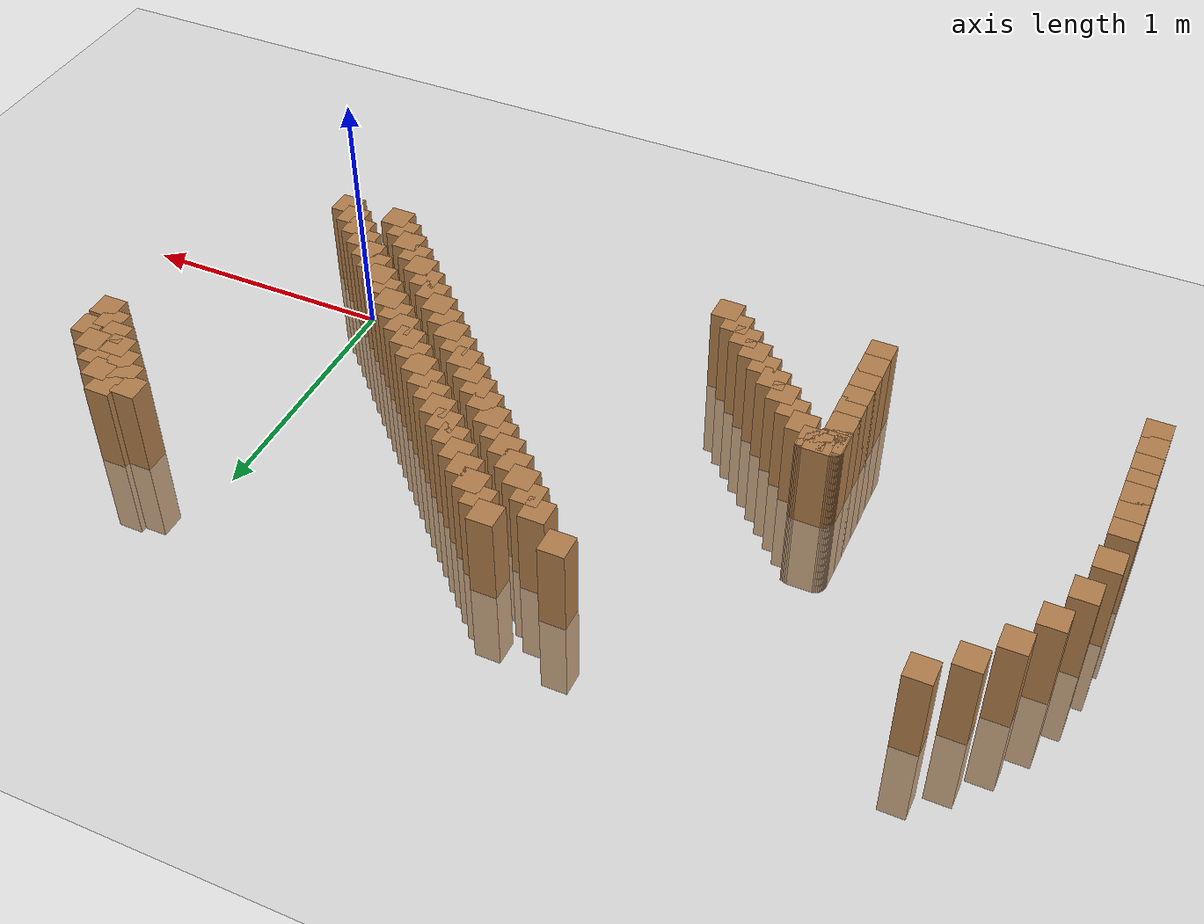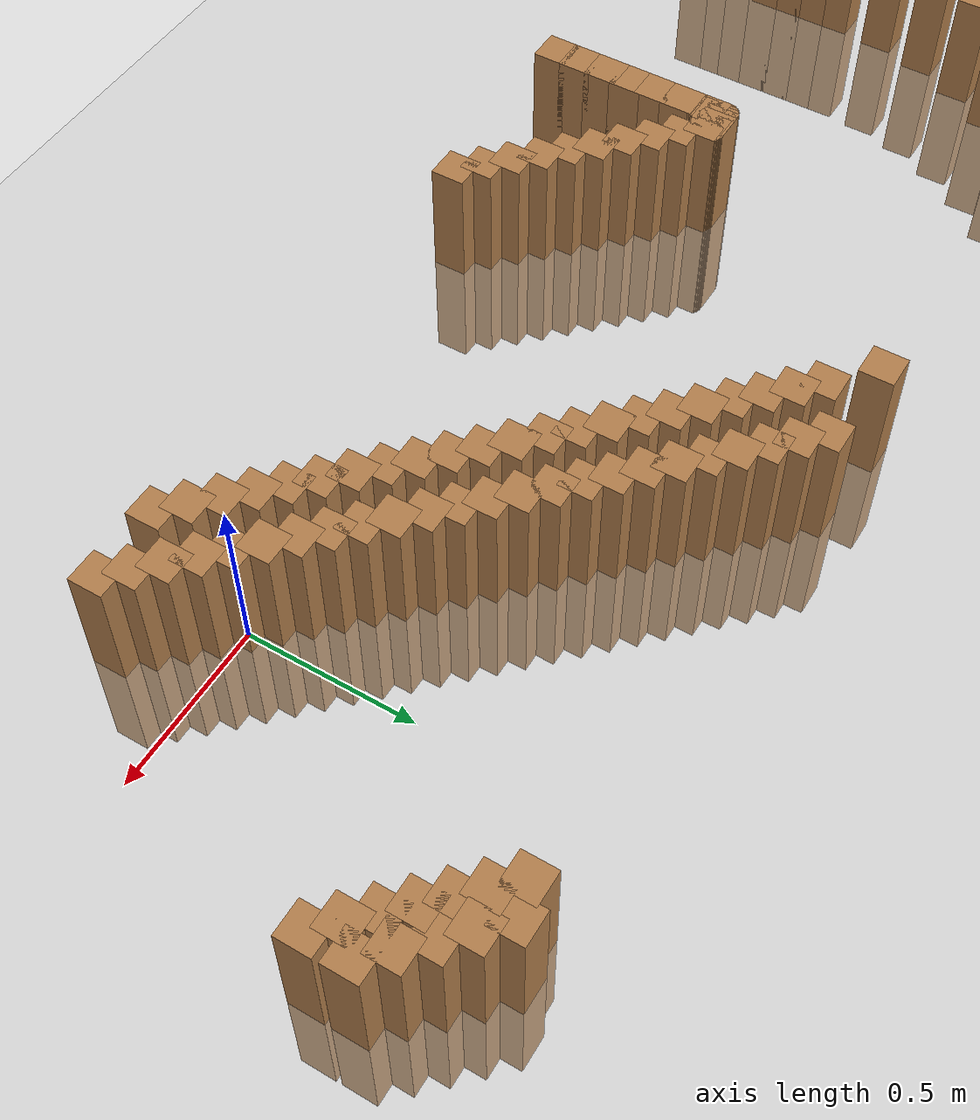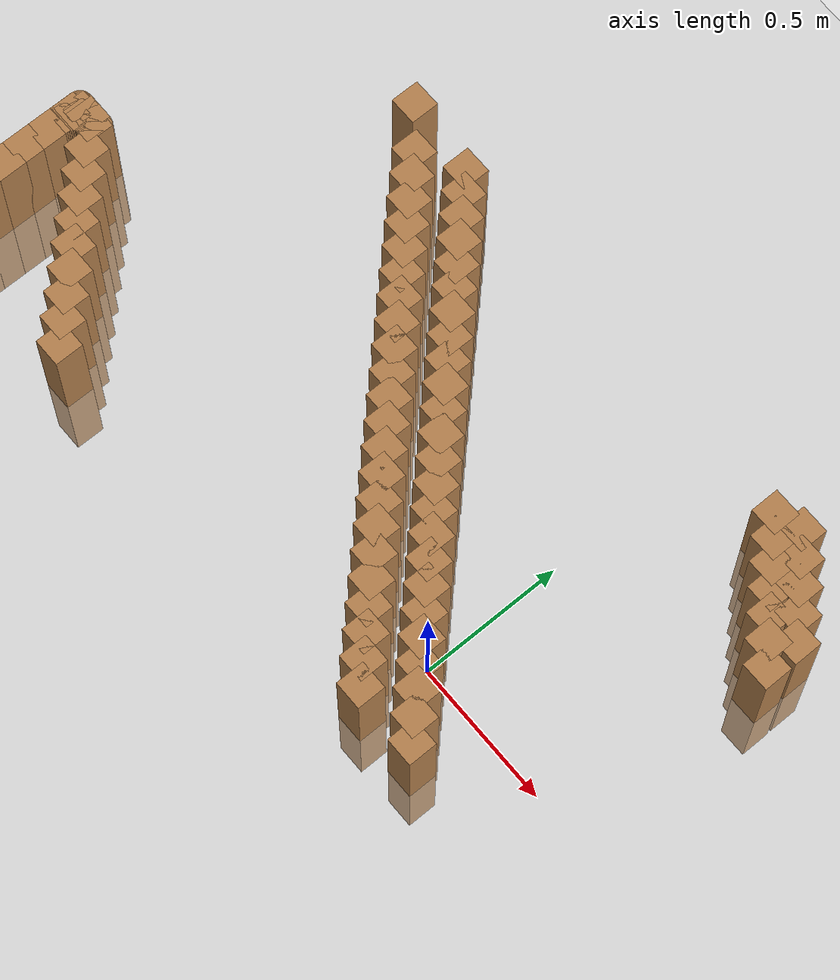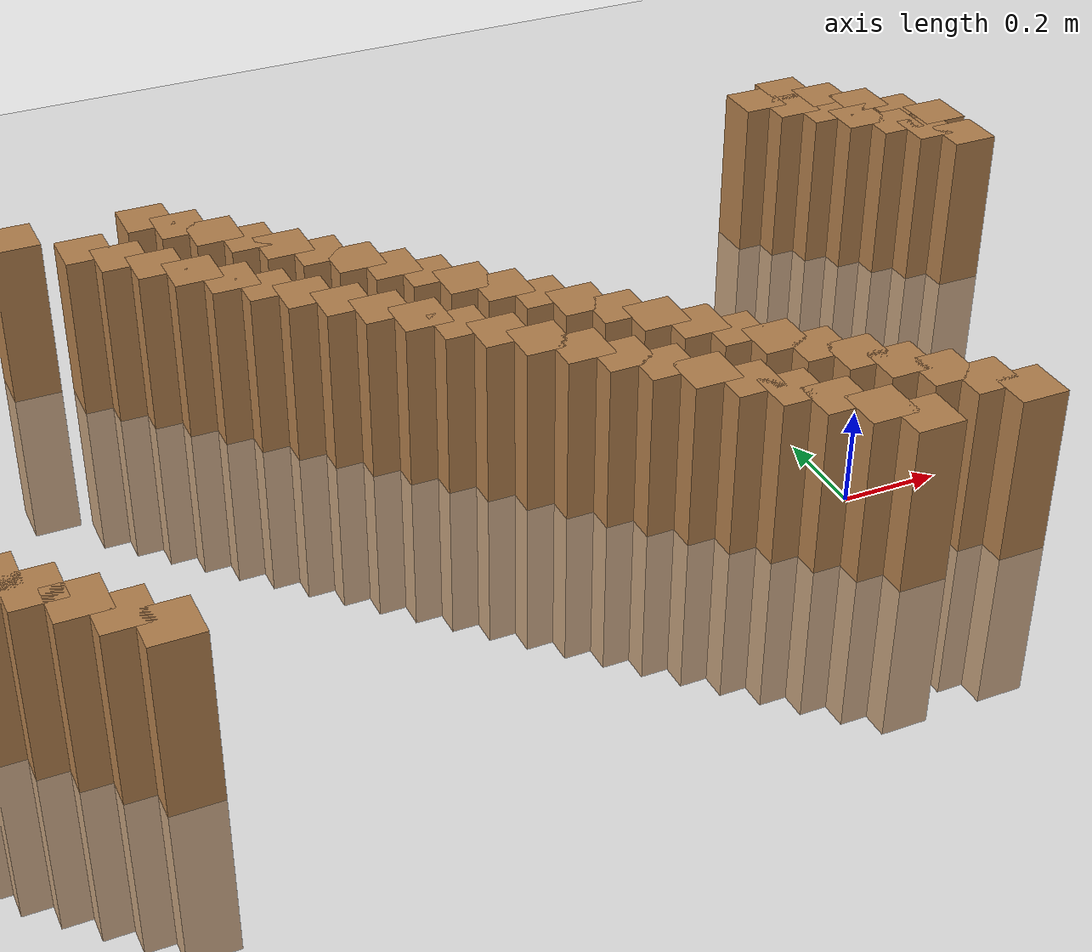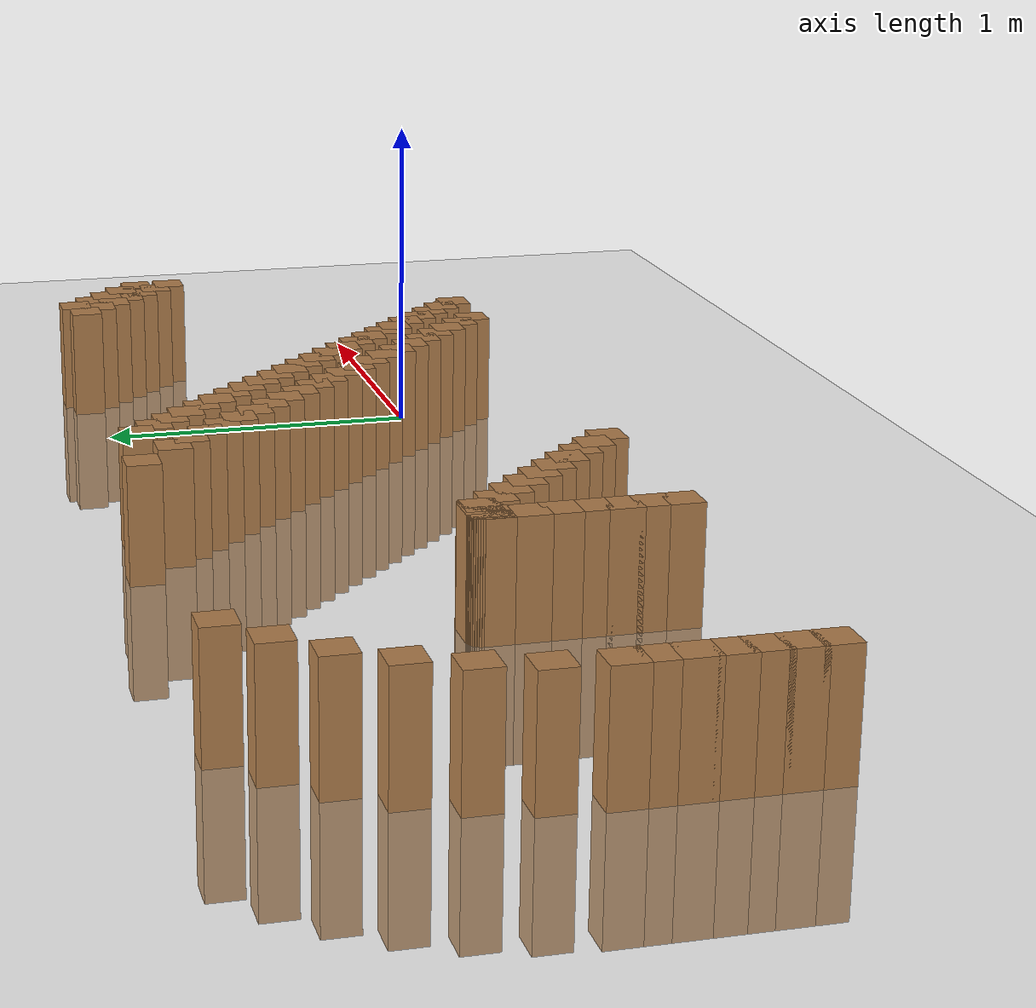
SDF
<sdf version="1.6">
 <world name="default">
  <model name="ground_plane">
   <static>1</static>
   <link name="link">
    <collision name="collision">
     <geometry><plane><normal>0 0 1</normal><size>100 100</size></plane></geometry>
     <surface><friction><ode><mu>100</mu><mu2>50</mu2></ode></friction></surface>
    </collision>
    <visual name="visual">
     <cast_shadows>0</cast_shadows>
     <geometry><plane><normal>0 0 1</normal><size>100 100</size></plane></geometry>
     <material>
      <script><uri>file://media/materials/scripts/gazebo.material</uri><name>Gazebo/Grey</name></script>
     </material>
    </visual>
   </link>
  </model>
  <model name="track">
   <link name="inner_41">
    <pose>0.359103 1.029510 0.000000 0 -0 0</pose>
    <collision name="collision"><geometry><box><size>0.1 0.1 0.7</size></box></geometry></collision>
    <visual name="visual">
     <geometry><box><size>0.1 0.1 0.7</size></box></geometry>
     <material>
      <script><uri>file://media/materials/scripts/gazebo.material</uri><name>Gazebo/Wood</name></script>
     </material>
    </visual>
   </link>
   <link name="inner_42">
    <pose>0.414989 0.973624 0.000000 0 -0 0</pose>
    <collision name="collision"><geometry><box><size>0.1 0.1 0.7</size></box></geometry></collision>
    <visual name="visual">
     <geometry><box><size>0.1 0.1 0.7</size></box></geometry>
     <material>
      <script><uri>file://media/materials/scripts/gazebo.material</uri><name>Gazebo/Wood</name></script>
     </material>
    </visual>
   </link>
   <link name="inner_43">
    <pose>0.470875 0.917738 0.000000 0 -0 0</pose>
    <collision name="collision"><geometry><box><size>0.1 0.1 0.7</size></box></geometry></collision>
    <visual name="visual">
     <geometry><box><size>0.1 0.1 0.7</size></box></geometry>
     <material>
      <script><uri>file://media/materials/scripts/gazebo.material</uri><name>Gazebo/Wood</name></script>
     </material>
    </visual>
   </link>
   <link name="inner_44">
    <pose>0.526762 0.861851 0.000000 0 -0 0</pose>
    <collision name="collision"><geometry><box><size>0.1 0.1 0.7</size></box></geometry></collision>
    <visual name="visual">
     <geometry><box><size>0.1 0.1 0.7</size></box></geometry>
     <material>
      <script><uri>file://media/materials/scripts/gazebo.material</uri><name>Gazebo/Wood</name></script>
     </material>
    </visual>
   </link>
   <link name="inner_45">
    <pose>0.582648 0.805965 0.000000 0 -0 0</pose>
    <collision name="collision"><geometry><box><size>0.1 0.1 0.7</size></box></geometry></collision>
    <visual name="visual">
     <geometry><box><size>0.1 0.1 0.7</size></box></geometry>
     <material>
      <script><uri>file://media/materials/scripts/gazebo.material</uri><name>Gazebo/Wood</name></script>
     </material>
    </visual>
   </link>
   <link name="inner_46">
    <pose>0.638535 0.750078 0.000000 0 -0 0</pose>
    <collision name="collision"><geometry><box><size>0.1 0.1 0.7</size></box></geometry></collision>
    <visual name="visual">
     <geometry><box><size>0.1 0.1 0.7</size></box></geometry>
     <material>
      <script><uri>file://media/materials/scripts/gazebo.material</uri><name>Gazebo/Wood</name></script>
     </material>
    </visual>
   </link>
   <link name="inner_47">
    <pose>0.694421 0.694192 0.000000 0 -0 0</pose>
    <collision name="collision"><geometry><box><size>0.1 0.1 0.7</size></box></geometry></collision>
    <visual name="visual">
     <geometry><box><size>0.1 0.1 0.7</size></box></geometry>
     <material>
      <script><uri>file://media/materials/scripts/gazebo.material</uri><name>Gazebo/Wood</name></script>
     </material>
    </visual>
   </link>
   <link name="inner_89">
    <pose>0.693146 0.810133 0.000000 0 -0 0</pose>
    <collision name="collision"><geometry><box><size>0.1 0.1 0.7</size></box></geometry></collision>
    <visual name="visual">
     <geometry><box><size>0.1 0.1 0.7</size></box></geometry>
     <material>
      <script><uri>file://media/materials/scripts/gazebo.material</uri><name>Gazebo/Wood</name></script>
     </material>
    </visual>
   </link>
   <link name="inner_90">
    <pose>0.631931 0.871348 0.000000 0 -0 0</pose>
    <collision name="collision"><geometry><box><size>0.1 0.1 0.7</size></box></geometry></collision>
    <visual name="visual">
     <geometry><box><size>0.1 0.1 0.7</size></box></geometry>
     <material>
      <script><uri>file://media/materials/scripts/gazebo.material</uri><name>Gazebo/Wood</name></script>
     </material>
    </visual>
   </link>
   <link name="inner_91">
    <pose>0.570717 0.932562 0.000000 0 -0 0</pose>
    <collision name="collision"><geometry><box><size>0.1 0.1 0.7</size></box></geometry></collision>
    <visual name="visual">
     <geometry><box><size>0.1 0.1 0.7</size></box></geometry>
     <material>
      <script><uri>file://media/materials/scripts/gazebo.material</uri><name>Gazebo/Wood</name></script>
     </material>
    </visual>
   </link>
   <link name="inner_92">
    <pose>0.509502 0.993777 0.000000 0 -0 0</pose>
    <collision name="collision"><geometry><box><size>0.1 0.1 0.7</size></box></geometry></collision>
    <visual name="visual">
     <geometry><box><size>0.1 0.1 0.7</size></box></geometry>
     <material>
      <script><uri>file://media/materials/scripts/gazebo.material</uri><name>Gazebo/Wood</name></script>
     </material>
    </visual>
   </link>
   <link name="inner_93">
    <pose>0.448288 1.054991 0.000000 0 -0 0</pose>
    <collision name="collision"><geometry><box><size>0.1 0.1 0.7</size></box></geometry></collision>
    <visual name="visual">
     <geometry><box><size>0.1 0.1 0.7</size></box></geometry>
     <material>
      <script><uri>file://media/materials/scripts/gazebo.material</uri><name>Gazebo/Wood</name></script>
     </material>
    </visual>
   </link>
   <link name="inner_294">
    <pose>-1.411927 -0.257219 0.000000 0 -0 0</pose>
    <collision name="collision"><geometry><box><size>0.1 0.1 0.7</size></box></geometry></collision>
    <visual name="visual">
     <geometry><box><size>0.1 0.1 0.7</size></box></geometry>
     <material>
      <script><uri>file://media/materials/scripts/gazebo.material</uri><name>Gazebo/Wood</name></script>
     </material>
    </visual>
   </link>
   <link name="inner_295">
    <pose>-1.469579 -0.199568 0.000000 0 -0 0</pose>
    <collision name="collision"><geometry><box><size>0.1 0.1 0.7</size></box></geometry></collision>
    <visual name="visual">
     <geometry><box><size>0.1 0.1 0.7</size></box></geometry>
     <material>
      <script><uri>file://media/materials/scripts/gazebo.material</uri><name>Gazebo/Wood</name></script>
     </material>
    </visual>
   </link>
   <link name="inner_296">
    <pose>-1.527230 -0.141916 0.000000 0 -0 0</pose>
    <collision name="collision"><geometry><box><size>0.1 0.1 0.7</size></box></geometry></collision>
    <visual name="visual">
     <geometry><box><size>0.1 0.1 0.7</size></box></geometry>
     <material>
      <script><uri>file://media/materials/scripts/gazebo.material</uri><name>Gazebo/Wood</name></script>
     </material>
    </visual>
   </link>
   <link name="inner_297">
    <pose>-1.584882 -0.084264 0.000000 0 -0 0</pose>
    <collision name="collision"><geometry><box><size>0.1 0.1 0.7</size></box></geometry></collision>
    <visual name="visual">
     <geometry><box><size>0.1 0.1 0.7</size></box></geometry>
     <material>
      <script><uri>file://media/materials/scripts/gazebo.material</uri><name>Gazebo/Wood</name></script>
     </material>
    </visual>
   </link>
   <link name="inner_298">
    <pose>-1.642534 -0.026612 0.000000 0 -0 0</pose>
    <collision name="collision"><geometry><box><size>0.1 0.1 0.7</size></box></geometry></collision>
    <visual name="visual">
     <geometry><box><size>0.1 0.1 0.7</size></box></geometry>
     <material>
      <script><uri>file://media/materials/scripts/gazebo.material</uri><name>Gazebo/Wood</name></script>
     </material>
    </visual>
   </link>
   <link name="inner_299">
    <pose>-1.700186 0.031040 0.000000 0 -0 0</pose>
    <collision name="collision"><geometry><box><size>0.1 0.1 0.7</size></box></geometry></collision>
    <visual name="visual">
     <geometry><box><size>0.1 0.1 0.7</size></box></geometry>
     <material>
      <script><uri>file://media/materials/scripts/gazebo.material</uri><name>Gazebo/Wood</name></script>
     </material>
    </visual>
   </link>
   <link name="inner_300">
    <pose>-1.757838 0.088691 0.000000 0 -0 0</pose>
    <collision name="collision"><geometry><box><size>0.1 0.1 0.7</size></box></geometry></collision>
    <visual name="visual">
     <geometry><box><size>0.1 0.1 0.7</size></box></geometry>
     <material>
      <script><uri>file://media/materials/scripts/gazebo.material</uri><name>Gazebo/Wood</name></script>
     </material>
    </visual>
   </link>
   <link name="inner_301">
    <pose>-1.815489 0.146343 0.000000 0 -0 0</pose>
    <collision name="collision"><geometry><box><size>0.1 0.1 0.7</size></box></geometry></collision>
    <visual name="visual">
     <geometry><box><size>0.1 0.1 0.7</size></box></geometry>
     <material>
      <script><uri>file://media/materials/scripts/gazebo.material</uri><name>Gazebo/Wood</name></script>
     </material>
    </visual>
   </link>
   <link name="inner_302">
    <pose>-1.873141 0.203995 0.000000 0 -0 0</pose>
    <collision name="collision"><geometry><box><size>0.1 0.1 0.7</size></box></geometry></collision>
    <visual name="visual">
     <geometry><box><size>0.1 0.1 0.7</size></box></geometry>
     <material>
      <script><uri>file://media/materials/scripts/gazebo.material</uri><name>Gazebo/Wood</name></script>
     </material>
    </visual>
   </link>
   <link name="inner_303">
    <pose>-1.930793 0.261647 0.000000 0 -0 0</pose>
    <collision name="collision"><geometry><box><size>0.1 0.1 0.7</size></box></geometry></collision>
    <visual name="visual">
     <geometry><box><size>0.1 0.1 0.7</size></box></geometry>
     <material>
      <script><uri>file://media/materials/scripts/gazebo.material</uri><name>Gazebo/Wood</name></script>
     </material>
    </visual>
   </link>
   <link name="inner_304">
    <pose>-1.935630 0.265778 0.000000 0 -0 0</pose>
    <collision name="collision"><geometry><box><size>0.1 0.1 0.7</size></box></geometry></collision>
    <visual name="visual">
     <geometry><box><size>0.1 0.1 0.7</size></box></geometry>
     <material>
      <script><uri>file://media/materials/scripts/gazebo.material</uri><name>Gazebo/Wood</name></script>
     </material>
    </visual>
   </link>
   <link name="inner_305">
    <pose>-1.941054 0.269102 0.000000 0 -0 0</pose>
    <collision name="collision"><geometry><box><size>0.1 0.1 0.7</size></box></geometry></collision>
    <visual name="visual">
     <geometry><box><size>0.1 0.1 0.7</size></box></geometry>
     <material>
      <script><uri>file://media/materials/scripts/gazebo.material</uri><name>Gazebo/Wood</name></script>
     </material>
    </visual>
   </link>
   <link name="inner_306">
    <pose>-1.946932 0.271537 0.000000 0 -0 0</pose>
    <collision name="collision"><geometry><box><size>0.1 0.1 0.7</size></box></geometry></collision>
    <visual name="visual">
     <geometry><box><size>0.1 0.1 0.7</size></box></geometry>
     <material>
      <script><uri>file://media/materials/scripts/gazebo.material</uri><name>Gazebo/Wood</name></script>
     </material>
    </visual>
   </link>
   <link name="inner_307">
    <pose>-1.953118 0.273022 0.000000 0 -0 0</pose>
    <collision name="collision"><geometry><box><size>0.1 0.1 0.7</size></box></geometry></collision>
    <visual name="visual">
     <geometry><box><size>0.1 0.1 0.7</size></box></geometry>
     <material>
      <script><uri>file://media/materials/scripts/gazebo.material</uri><name>Gazebo/Wood</name></script>
     </material>
    </visual>
   </link>
   <link name="inner_308">
    <pose>-1.959459 0.273521 0.000000 0 -0 0</pose>
    <collision name="collision"><geometry><box><size>0.1 0.1 0.7</size></box></geometry></collision>
    <visual name="visual">
     <geometry><box><size>0.1 0.1 0.7</size></box></geometry>
     <material>
      <script><uri>file://media/materials/scripts/gazebo.material</uri><name>Gazebo/Wood</name></script>
     </material>
    </visual>
   </link>
   <link name="inner_309">
    <pose>-1.965801 0.273022 0.000000 0 -0 0</pose>
    <collision name="collision"><geometry><box><size>0.1 0.1 0.7</size></box></geometry></collision>
    <visual name="visual">
     <geometry><box><size>0.1 0.1 0.7</size></box></geometry>
     <material>
      <script><uri>file://media/materials/scripts/gazebo.material</uri><name>Gazebo/Wood</name></script>
     </material>
    </visual>
   </link>
   <link name="inner_310">
    <pose>-1.971987 0.271537 0.000000 0 -0 0</pose>
    <collision name="collision"><geometry><box><size>0.1 0.1 0.7</size></box></geometry></collision>
    <visual name="visual">
     <geometry><box><size>0.1 0.1 0.7</size></box></geometry>
     <material>
      <script><uri>file://media/materials/scripts/gazebo.material</uri><name>Gazebo/Wood</name></script>
     </material>
    </visual>
   </link>
   <link name="inner_311">
    <pose>-1.977864 0.269102 0.000000 0 -0 0</pose>
    <collision name="collision"><geometry><box><size>0.1 0.1 0.7</size></box></geometry></collision>
    <visual name="visual">
     <geometry><box><size>0.1 0.1 0.7</size></box></geometry>
     <material>
      <script><uri>file://media/materials/scripts/gazebo.material</uri><name>Gazebo/Wood</name></script>
     </material>
    </visual>
   </link>
   <link name="inner_312">
    <pose>-1.983289 0.265778 0.000000 0 -0 0</pose>
    <collision name="collision"><geometry><box><size>0.1 0.1 0.7</size></box></geometry></collision>
    <visual name="visual">
     <geometry><box><size>0.1 0.1 0.7</size></box></geometry>
     <material>
      <script><uri>file://media/materials/scripts/gazebo.material</uri><name>Gazebo/Wood</name></script>
     </material>
    </visual>
   </link>
   <link name="inner_313">
    <pose>-1.988126 0.261647 0.000000 0 -0 0</pose>
    <collision name="collision"><geometry><box><size>0.1 0.1 0.7</size></box></geometry></collision>
    <visual name="visual">
     <geometry><box><size>0.1 0.1 0.7</size></box></geometry>
     <material>
      <script><uri>file://media/materials/scripts/gazebo.material</uri><name>Gazebo/Wood</name></script>
     </material>
    </visual>
   </link>
   <link name="inner_314">
    <pose>-1.992257 0.256810 0.000000 0 -0 0</pose>
    <collision name="collision"><geometry><box><size>0.1 0.1 0.7</size></box></geometry></collision>
    <visual name="visual">
     <geometry><box><size>0.1 0.1 0.7</size></box></geometry>
     <material>
      <script><uri>file://media/materials/scripts/gazebo.material</uri><name>Gazebo/Wood</name></script>
     </material>
    </visual>
   </link>
   <link name="inner_315">
    <pose>-1.995581 0.251385 0.000000 0 -0 0</pose>
    <collision name="collision"><geometry><box><size>0.1 0.1 0.7</size></box></geometry></collision>
    <visual name="visual">
     <geometry><box><size>0.1 0.1 0.7</size></box></geometry>
     <material>
      <script><uri>file://media/materials/scripts/gazebo.material</uri><name>Gazebo/Wood</name></script>
     </material>
    </visual>
   </link>
   <link name="inner_316">
    <pose>-1.998016 0.245508 0.000000 0 -0 0</pose>
    <collision name="collision"><geometry><box><size>0.1 0.1 0.7</size></box></geometry></collision>
    <visual name="visual">
     <geometry><box><size>0.1 0.1 0.7</size></box></geometry>
     <material>
      <script><uri>file://media/materials/scripts/gazebo.material</uri><name>Gazebo/Wood</name></script>
     </material>
    </visual>
   </link>
   <link name="inner_317">
    <pose>-1.999501 0.239322 0.000000 0 -0 0</pose>
    <collision name="collision"><geometry><box><size>0.1 0.1 0.7</size></box></geometry></collision>
    <visual name="visual">
     <geometry><box><size>0.1 0.1 0.7</size></box></geometry>
     <material>
      <script><uri>file://media/materials/scripts/gazebo.material</uri><name>Gazebo/Wood</name></script>
     </material>
    </visual>
   </link>
   <link name="inner_318">
    <pose>-2.000000 0.232980 0.000000 0 -0 0</pose>
    <collision name="collision"><geometry><box><size>0.1 0.1 0.7</size></box></geometry></collision>
    <visual name="visual">
     <geometry><box><size>0.1 0.1 0.7</size></box></geometry>
     <material>
      <script><uri>file://media/materials/scripts/gazebo.material</uri><name>Gazebo/Wood</name></script>
     </material>
    </visual>
   </link>
   <link name="inner_319">
    <pose>-2.000000 0.149034 0.000000 0 -0 0</pose>
    <collision name="collision"><geometry><box><size>0.1 0.1 0.7</size></box></geometry></collision>
    <visual name="visual">
     <geometry><box><size>0.1 0.1 0.7</size></box></geometry>
     <material>
      <script><uri>file://media/materials/scripts/gazebo.material</uri><name>Gazebo/Wood</name></script>
     </material>
    </visual>
   </link>
   <link name="inner_320">
    <pose>-2.000000 0.065088 0.000000 0 -0 0</pose>
    <collision name="collision"><geometry><box><size>0.1 0.1 0.7</size></box></geometry></collision>
    <visual name="visual">
     <geometry><box><size>0.1 0.1 0.7</size></box></geometry>
     <material>
      <script><uri>file://media/materials/scripts/gazebo.material</uri><name>Gazebo/Wood</name></script>
     </material>
    </visual>
   </link>
   <link name="inner_321">
    <pose>-2.000000 -0.018859 0.000000 0 -0 0</pose>
    <collision name="collision"><geometry><box><size>0.1 0.1 0.7</size></box></geometry></collision>
    <visual name="visual">
     <geometry><box><size>0.1 0.1 0.7</size></box></geometry>
     <material>
      <script><uri>file://media/materials/scripts/gazebo.material</uri><name>Gazebo/Wood</name></script>
     </material>
    </visual>
   </link>
   <link name="inner_322">
    <pose>-2.000000 -0.102805 0.000000 0 -0 0</pose>
    <collision name="collision"><geometry><box><size>0.1 0.1 0.7</size></box></geometry></collision>
    <visual name="visual">
     <geometry><box><size>0.1 0.1 0.7</size></box></geometry>
     <material>
      <script><uri>file://media/materials/scripts/gazebo.material</uri><name>Gazebo/Wood</name></script>
     </material>
    </visual>
   </link>
   <link name="inner_323">
    <pose>-2.000000 -0.186751 0.000000 0 -0 0</pose>
    <collision name="collision"><geometry><box><size>0.1 0.1 0.7</size></box></geometry></collision>
    <visual name="visual">
     <geometry><box><size>0.1 0.1 0.7</size></box></geometry>
     <material>
      <script><uri>file://media/materials/scripts/gazebo.material</uri><name>Gazebo/Wood</name></script>
     </material>
    </visual>
   </link>
   <link name="inner_324">
    <pose>-2.000000 -0.270698 0.000000 0 -0 0</pose>
    <collision name="collision"><geometry><box><size>0.1 0.1 0.7</size></box></geometry></collision>
    <visual name="visual">
     <geometry><box><size>0.1 0.1 0.7</size></box></geometry>
     <material>
      <script><uri>file://media/materials/scripts/gazebo.material</uri><name>Gazebo/Wood</name></script>
     </material>
    </visual>
   </link>
   <link name="outer_28">
    <pose>-1.074527 1.048927 0.000000 0 -0 0</pose>
    <collision name="collision"><geometry><box><size>0.1 0.1 0.7</size></box></geometry></collision>
    <visual name="visual">
     <geometry><box><size>0.1 0.1 0.7</size></box></geometry>
     <material>
      <script><uri>file://media/materials/scripts/gazebo.material</uri><name>Gazebo/Wood</name></script>
     </material>
    </visual>
   </link>
   <link name="outer_29">
    <pose>-1.018641 0.993040 0.000000 0 -0 0</pose>
    <collision name="collision"><geometry><box><size>0.1 0.1 0.7</size></box></geometry></collision>
    <visual name="visual">
     <geometry><box><size>0.1 0.1 0.7</size></box></geometry>
     <material>
      <script><uri>file://media/materials/scripts/gazebo.material</uri><name>Gazebo/Wood</name></script>
     </material>
    </visual>
   </link>
   <link name="outer_30">
    <pose>-0.962754 0.937154 0.000000 0 -0 0</pose>
    <collision name="collision"><geometry><box><size>0.1 0.1 0.7</size></box></geometry></collision>
    <visual name="visual">
     <geometry><box><size>0.1 0.1 0.7</size></box></geometry>
     <material>
      <script><uri>file://media/materials/scripts/gazebo.material</uri><name>Gazebo/Wood</name></script>
     </material>
    </visual>
   </link>
   <link name="outer_31">
    <pose>-0.906868 0.881267 0.000000 0 -0 0</pose>
    <collision name="collision"><geometry><box><size>0.1 0.1 0.7</size></box></geometry></collision>
    <visual name="visual">
     <geometry><box><size>0.1 0.1 0.7</size></box></geometry>
     <material>
      <script><uri>file://media/materials/scripts/gazebo.material</uri><name>Gazebo/Wood</name></script>
     </material>
    </visual>
   </link>
   <link name="outer_32">
    <pose>-0.850982 0.825381 0.000000 0 -0 0</pose>
    <collision name="collision"><geometry><box><size>0.1 0.1 0.7</size></box></geometry></collision>
    <visual name="visual">
     <geometry><box><size>0.1 0.1 0.7</size></box></geometry>
     <material>
      <script><uri>file://media/materials/scripts/gazebo.material</uri><name>Gazebo/Wood</name></script>
     </material>
    </visual>
   </link>
   <link name="outer_33">
    <pose>-0.795095 0.769495 0.000000 0 -0 0</pose>
    <collision name="collision"><geometry><box><size>0.1 0.1 0.7</size></box></geometry></collision>
    <visual name="visual">
     <geometry><box><size>0.1 0.1 0.7</size></box></geometry>
     <material>
      <script><uri>file://media/materials/scripts/gazebo.material</uri><name>Gazebo/Wood</name></script>
     </material>
    </visual>
   </link>
   <link name="outer_34">
    <pose>-0.739209 0.713608 0.000000 0 -0 0</pose>
    <collision name="collision"><geometry><box><size>0.1 0.1 0.7</size></box></geometry></collision>
    <visual name="visual">
     <geometry><box><size>0.1 0.1 0.7</size></box></geometry>
     <material>
      <script><uri>file://media/materials/scripts/gazebo.material</uri><name>Gazebo/Wood</name></script>
     </material>
    </visual>
   </link>
   <link name="outer_35">
    <pose>-0.683323 0.657722 0.000000 0 -0 0</pose>
    <collision name="collision"><geometry><box><size>0.1 0.1 0.7</size></box></geometry></collision>
    <visual name="visual">
     <geometry><box><size>0.1 0.1 0.7</size></box></geometry>
     <material>
      <script><uri>file://media/materials/scripts/gazebo.material</uri><name>Gazebo/Wood</name></script>
     </material>
    </visual>
   </link>
   <link name="outer_36">
    <pose>-0.627436 0.601836 0.000000 0 -0 0</pose>
    <collision name="collision"><geometry><box><size>0.1 0.1 0.7</size></box></geometry></collision>
    <visual name="visual">
     <geometry><box><size>0.1 0.1 0.7</size></box></geometry>
     <material>
      <script><uri>file://media/materials/scripts/gazebo.material</uri><name>Gazebo/Wood</name></script>
     </material>
    </visual>
   </link>
   <link name="outer_37">
    <pose>-0.571550 0.545949 0.000000 0 -0 0</pose>
    <collision name="collision"><geometry><box><size>0.1 0.1 0.7</size></box></geometry></collision>
    <visual name="visual">
     <geometry><box><size>0.1 0.1 0.7</size></box></geometry>
     <material>
      <script><uri>file://media/materials/scripts/gazebo.material</uri><name>Gazebo/Wood</name></script>
     </material>
    </visual>
   </link>
   <link name="outer_38">
    <pose>-0.515663 0.490063 0.000000 0 -0 0</pose>
    <collision name="collision"><geometry><box><size>0.1 0.1 0.7</size></box></geometry></collision>
    <visual name="visual">
     <geometry><box><size>0.1 0.1 0.7</size></box></geometry>
     <material>
      <script><uri>file://media/materials/scripts/gazebo.material</uri><name>Gazebo/Wood</name></script>
     </material>
    </visual>
   </link>
   <link name="outer_39">
    <pose>-0.459777 0.434176 0.000000 0 -0 0</pose>
    <collision name="collision"><geometry><box><size>0.1 0.1 0.7</size></box></geometry></collision>
    <visual name="visual">
     <geometry><box><size>0.1 0.1 0.7</size></box></geometry>
     <material>
      <script><uri>file://media/materials/scripts/gazebo.material</uri><name>Gazebo/Wood</name></script>
     </material>
    </visual>
   </link>
   <link name="outer_40">
    <pose>-0.403891 0.378290 0.000000 0 -0 0</pose>
    <collision name="collision"><geometry><box><size>0.1 0.1 0.7</size></box></geometry></collision>
    <visual name="visual">
     <geometry><box><size>0.1 0.1 0.7</size></box></geometry>
     <material>
      <script><uri>file://media/materials/scripts/gazebo.material</uri><name>Gazebo/Wood</name></script>
     </material>
    </visual>
   </link>
   <link name="outer_41">
    <pose>-0.348004 0.322404 0.000000 0 -0 0</pose>
    <collision name="collision"><geometry><box><size>0.1 0.1 0.7</size></box></geometry></collision>
    <visual name="visual">
     <geometry><box><size>0.1 0.1 0.7</size></box></geometry>
     <material>
      <script><uri>file://media/materials/scripts/gazebo.material</uri><name>Gazebo/Wood</name></script>
     </material>
    </visual>
   </link>
   <link name="outer_42">
    <pose>-0.292118 0.266517 0.000000 0 -0 0</pose>
    <collision name="collision"><geometry><box><size>0.1 0.1 0.7</size></box></geometry></collision>
    <visual name="visual">
     <geometry><box><size>0.1 0.1 0.7</size></box></geometry>
     <material>
      <script><uri>file://media/materials/scripts/gazebo.material</uri><name>Gazebo/Wood</name></script>
     </material>
    </visual>
   </link>
   <link name="outer_43">
    <pose>-0.236231 0.210631 0.000000 0 -0 0</pose>
    <collision name="collision"><geometry><box><size>0.1 0.1 0.7</size></box></geometry></collision>
    <visual name="visual">
     <geometry><box><size>0.1 0.1 0.7</size></box></geometry>
     <material>
      <script><uri>file://media/materials/scripts/gazebo.material</uri><name>Gazebo/Wood</name></script>
     </material>
    </visual>
   </link>
   <link name="outer_44">
    <pose>-0.180345 0.154744 0.000000 0 -0 0</pose>
    <collision name="collision"><geometry><box><size>0.1 0.1 0.7</size></box></geometry></collision>
    <visual name="visual">
     <geometry><box><size>0.1 0.1 0.7</size></box></geometry>
     <material>
      <script><uri>file://media/materials/scripts/gazebo.material</uri><name>Gazebo/Wood</name></script>
     </material>
    </visual>
   </link>
   <link name="outer_45">
    <pose>-0.124459 0.098858 0.000000 0 -0 0</pose>
    <collision name="collision"><geometry><box><size>0.1 0.1 0.7</size></box></geometry></collision>
    <visual name="visual">
     <geometry><box><size>0.1 0.1 0.7</size></box></geometry>
     <material>
      <script><uri>file://media/materials/scripts/gazebo.material</uri><name>Gazebo/Wood</name></script>
     </material>
    </visual>
   </link>
   <link name="outer_46">
    <pose>-0.068572 0.042972 0.000000 0 -0 0</pose>
    <collision name="collision"><geometry><box><size>0.1 0.1 0.7</size></box></geometry></collision>
    <visual name="visual">
     <geometry><box><size>0.1 0.1 0.7</size></box></geometry>
     <material>
      <script><uri>file://media/materials/scripts/gazebo.material</uri><name>Gazebo/Wood</name></script>
     </material>
    </visual>
   </link>
   <link name="outer_47">
    <pose>-0.012686 -0.012915 0.000000 0 -0 0</pose>
    <collision name="collision"><geometry><box><size>0.1 0.1 0.7</size></box></geometry></collision>
    <visual name="visual">
     <geometry><box><size>0.1 0.1 0.7</size></box></geometry>
     <material>
      <script><uri>file://media/materials/scripts/gazebo.material</uri><name>Gazebo/Wood</name></script>
     </material>
    </visual>
   </link>
   <link name="outer_48">
    <pose>0.043201 -0.068801 0.000000 0 -0 0</pose>
    <collision name="collision"><geometry><box><size>0.1 0.1 0.7</size></box></geometry></collision>
    <visual name="visual">
     <geometry><box><size>0.1 0.1 0.7</size></box></geometry>
     <material>
      <script><uri>file://media/materials/scripts/gazebo.material</uri><name>Gazebo/Wood</name></script>
     </material>
    </visual>
   </link>
   <link name="outer_49">
    <pose>0.099087 -0.124688 0.000000 0 -0 0</pose>
    <collision name="collision"><geometry><box><size>0.1 0.1 0.7</size></box></geometry></collision>
    <visual name="visual">
     <geometry><box><size>0.1 0.1 0.7</size></box></geometry>
     <material>
      <script><uri>file://media/materials/scripts/gazebo.material</uri><name>Gazebo/Wood</name></script>
     </material>
    </visual>
   </link>
   <link name="outer_50">
    <pose>0.154973 -0.180574 0.000000 0 -0 0</pose>
    <collision name="collision"><geometry><box><size>0.1 0.1 0.7</size></box></geometry></collision>
    <visual name="visual">
     <geometry><box><size>0.1 0.1 0.7</size></box></geometry>
     <material>
      <script><uri>file://media/materials/scripts/gazebo.material</uri><name>Gazebo/Wood</name></script>
     </material>
    </visual>
   </link>
   <link name="outer_51">
    <pose>0.210860 -0.236460 0.000000 0 -0 0</pose>
    <collision name="collision"><geometry><box><size>0.1 0.1 0.7</size></box></geometry></collision>
    <visual name="visual">
     <geometry><box><size>0.1 0.1 0.7</size></box></geometry>
     <material>
      <script><uri>file://media/materials/scripts/gazebo.material</uri><name>Gazebo/Wood</name></script>
     </material>
    </visual>
   </link>
   <link name="outer_282">
    <pose>-0.012998 -0.241934 0.000000 0 -0 0</pose>
    <collision name="collision"><geometry><box><size>0.1 0.1 0.7</size></box></geometry></collision>
    <visual name="visual">
     <geometry><box><size>0.1 0.1 0.7</size></box></geometry>
     <material>
      <script><uri>file://media/materials/scripts/gazebo.material</uri><name>Gazebo/Wood</name></script>
     </material>
    </visual>
   </link>
   <link name="outer_283">
    <pose>-0.070650 -0.184282 0.000000 0 -0 0</pose>
    <collision name="collision"><geometry><box><size>0.1 0.1 0.7</size></box></geometry></collision>
    <visual name="visual">
     <geometry><box><size>0.1 0.1 0.7</size></box></geometry>
     <material>
      <script><uri>file://media/materials/scripts/gazebo.material</uri><name>Gazebo/Wood</name></script>
     </material>
    </visual>
   </link>
   <link name="outer_284">
    <pose>-0.128302 -0.126631 0.000000 0 -0 0</pose>
    <collision name="collision"><geometry><box><size>0.1 0.1 0.7</size></box></geometry></collision>
    <visual name="visual">
     <geometry><box><size>0.1 0.1 0.7</size></box></geometry>
     <material>
      <script><uri>file://media/materials/scripts/gazebo.material</uri><name>Gazebo/Wood</name></script>
     </material>
    </visual>
   </link>
   <link name="outer_285">
    <pose>-0.185954 -0.068979 0.000000 0 -0 0</pose>
    <collision name="collision"><geometry><box><size>0.1 0.1 0.7</size></box></geometry></collision>
    <visual name="visual">
     <geometry><box><size>0.1 0.1 0.7</size></box></geometry>
     <material>
      <script><uri>file://media/materials/scripts/gazebo.material</uri><name>Gazebo/Wood</name></script>
     </material>
    </visual>
   </link>
   <link name="outer_286">
    <pose>-0.243605 -0.011327 0.000000 0 -0 0</pose>
    <collision name="collision"><geometry><box><size>0.1 0.1 0.7</size></box></geometry></collision>
    <visual name="visual">
     <geometry><box><size>0.1 0.1 0.7</size></box></geometry>
     <material>
      <script><uri>file://media/materials/scripts/gazebo.material</uri><name>Gazebo/Wood</name></script>
     </material>
    </visual>
   </link>
   <link name="outer_287">
    <pose>-0.301257 0.046325 0.000000 0 -0 0</pose>
    <collision name="collision"><geometry><box><size>0.1 0.1 0.7</size></box></geometry></collision>
    <visual name="visual">
     <geometry><box><size>0.1 0.1 0.7</size></box></geometry>
     <material>
      <script><uri>file://media/materials/scripts/gazebo.material</uri><name>Gazebo/Wood</name></script>
     </material>
    </visual>
   </link>
   <link name="outer_288">
    <pose>-0.358909 0.103977 0.000000 0 -0 0</pose>
    <collision name="collision"><geometry><box><size>0.1 0.1 0.7</size></box></geometry></collision>
    <visual name="visual">
     <geometry><box><size>0.1 0.1 0.7</size></box></geometry>
     <material>
      <script><uri>file://media/materials/scripts/gazebo.material</uri><name>Gazebo/Wood</name></script>
     </material>
    </visual>
   </link>
   <link name="outer_289">
    <pose>-0.416561 0.161628 0.000000 0 -0 0</pose>
    <collision name="collision"><geometry><box><size>0.1 0.1 0.7</size></box></geometry></collision>
    <visual name="visual">
     <geometry><box><size>0.1 0.1 0.7</size></box></geometry>
     <material>
      <script><uri>file://media/materials/scripts/gazebo.material</uri><name>Gazebo/Wood</name></script>
     </material>
    </visual>
   </link>
   <link name="outer_290">
    <pose>-0.474213 0.219280 0.000000 0 -0 0</pose>
    <collision name="collision"><geometry><box><size>0.1 0.1 0.7</size></box></geometry></collision>
    <visual name="visual">
     <geometry><box><size>0.1 0.1 0.7</size></box></geometry>
     <material>
      <script><uri>file://media/materials/scripts/gazebo.material</uri><name>Gazebo/Wood</name></script>
     </material>
    </visual>
   </link>
   <link name="outer_291">
    <pose>-0.531864 0.276932 0.000000 0 -0 0</pose>
    <collision name="collision"><geometry><box><size>0.1 0.1 0.7</size></box></geometry></collision>
    <visual name="visual">
     <geometry><box><size>0.1 0.1 0.7</size></box></geometry>
     <material>
      <script><uri>file://media/materials/scripts/gazebo.material</uri><name>Gazebo/Wood</name></script>
     </material>
    </visual>
   </link>
   <link name="outer_292">
    <pose>-0.589516 0.334584 0.000000 0 -0 0</pose>
    <collision name="collision"><geometry><box><size>0.1 0.1 0.7</size></box></geometry></collision>
    <visual name="visual">
     <geometry><box><size>0.1 0.1 0.7</size></box></geometry>
     <material>
      <script><uri>file://media/materials/scripts/gazebo.material</uri><name>Gazebo/Wood</name></script>
     </material>
    </visual>
   </link>
   <link name="outer_293">
    <pose>-0.647168 0.392236 0.000000 0 -0 0</pose>
    <collision name="collision"><geometry><box><size>0.1 0.1 0.7</size></box></geometry></collision>
    <visual name="visual">
     <geometry><box><size>0.1 0.1 0.7</size></box></geometry>
     <material>
      <script><uri>file://media/materials/scripts/gazebo.material</uri><name>Gazebo/Wood</name></script>
     </material>
    </visual>
   </link>
   <link name="outer_294">
    <pose>-0.704820 0.449887 0.000000 0 -0 0</pose>
    <collision name="collision"><geometry><box><size>0.1 0.1 0.7</size></box></geometry></collision>
    <visual name="visual">
     <geometry><box><size>0.1 0.1 0.7</size></box></geometry>
     <material>
      <script><uri>file://media/materials/scripts/gazebo.material</uri><name>Gazebo/Wood</name></script>
     </material>
    </visual>
   </link>
   <link name="outer_295">
    <pose>-0.762472 0.507539 0.000000 0 -0 0</pose>
    <collision name="collision"><geometry><box><size>0.1 0.1 0.7</size></box></geometry></collision>
    <visual name="visual">
     <geometry><box><size>0.1 0.1 0.7</size></box></geometry>
     <material>
      <script><uri>file://media/materials/scripts/gazebo.material</uri><name>Gazebo/Wood</name></script>
     </material>
    </visual>
   </link>
   <link name="outer_296">
    <pose>-0.820124 0.565191 0.000000 0 -0 0</pose>
    <collision name="collision"><geometry><box><size>0.1 0.1 0.7</size></box></geometry></collision>
    <visual name="visual">
     <geometry><box><size>0.1 0.1 0.7</size></box></geometry>
     <material>
      <script><uri>file://media/materials/scripts/gazebo.material</uri><name>Gazebo/Wood</name></script>
     </material>
    </visual>
   </link>
   <link name="outer_297">
    <pose>-0.877775 0.622843 0.000000 0 -0 0</pose>
    <collision name="collision"><geometry><box><size>0.1 0.1 0.7</size></box></geometry></collision>
    <visual name="visual">
     <geometry><box><size>0.1 0.1 0.7</size></box></geometry>
     <material>
      <script><uri>file://media/materials/scripts/gazebo.material</uri><name>Gazebo/Wood</name></script>
     </material>
    </visual>
   </link>
   <link name="outer_298">
    <pose>-0.935427 0.680495 0.000000 0 -0 0</pose>
    <collision name="collision"><geometry><box><size>0.1 0.1 0.7</size></box></geometry></collision>
    <visual name="visual">
     <geometry><box><size>0.1 0.1 0.7</size></box></geometry>
     <material>
      <script><uri>file://media/materials/scripts/gazebo.material</uri><name>Gazebo/Wood</name></script>
     </material>
    </visual>
   </link>
   <link name="outer_299">
    <pose>-0.993079 0.738146 0.000000 0 -0 0</pose>
    <collision name="collision"><geometry><box><size>0.1 0.1 0.7</size></box></geometry></collision>
    <visual name="visual">
     <geometry><box><size>0.1 0.1 0.7</size></box></geometry>
     <material>
      <script><uri>file://media/materials/scripts/gazebo.material</uri><name>Gazebo/Wood</name></script>
     </material>
    </visual>
   </link>
   <link name="outer_300">
    <pose>-1.050731 0.795798 0.000000 0 -0 0</pose>
    <collision name="collision"><geometry><box><size>0.1 0.1 0.7</size></box></geometry></collision>
    <visual name="visual">
     <geometry><box><size>0.1 0.1 0.7</size></box></geometry>
     <material>
      <script><uri>file://media/materials/scripts/gazebo.material</uri><name>Gazebo/Wood</name></script>
     </material>
    </visual>
   </link>
   <link name="outer_301">
    <pose>-1.108383 0.853450 0.000000 0 -0 0</pose>
    <collision name="collision"><geometry><box><size>0.1 0.1 0.7</size></box></geometry></collision>
    <visual name="visual">
     <geometry><box><size>0.1 0.1 0.7</size></box></geometry>
     <material>
      <script><uri>file://media/materials/scripts/gazebo.material</uri><name>Gazebo/Wood</name></script>
     </material>
    </visual>
   </link>
   <link name="outer_302">
    <pose>-1.166034 0.911102 0.000000 0 -0 0</pose>
    <collision name="collision"><geometry><box><size>0.1 0.1 0.7</size></box></geometry></collision>
    <visual name="visual">
     <geometry><box><size>0.1 0.1 0.7</size></box></geometry>
     <material>
      <script><uri>file://media/materials/scripts/gazebo.material</uri><name>Gazebo/Wood</name></script>
     </material>
    </visual>
   </link>
   <link name="outer_303">
    <pose>-1.223686 0.968754 0.000000 0 -0 0</pose>
    <collision name="collision"><geometry><box><size>0.1 0.1 0.7</size></box></geometry></collision>
    <visual name="visual">
     <geometry><box><size>0.1 0.1 0.7</size></box></geometry>
     <material>
      <script><uri>file://media/materials/scripts/gazebo.material</uri><name>Gazebo/Wood</name></script>
     </material>
    </visual>
   </link>
   <link name="outer_304">
    <pose>-1.347845 1.074795 0.000000 0 -0 0</pose>
    <collision name="collision"><geometry><box><size>0.1 0.1 0.7</size></box></geometry></collision>
    <visual name="visual">
     <geometry><box><size>0.1 0.1 0.7</size></box></geometry>
     <material>
      <script><uri>file://media/materials/scripts/gazebo.material</uri><name>Gazebo/Wood</name></script>
     </material>
    </visual>
   </link>
   <link name="outer_312">
    <pose>-2.571074 1.074795 0.000000 0 -0 0</pose>
    <collision name="collision"><geometry><box><size>0.1 0.1 0.7</size></box></geometry></collision>
    <visual name="visual">
     <geometry><box><size>0.1 0.1 0.7</size></box></geometry>
     <material>
      <script><uri>file://media/materials/scripts/gazebo.material</uri><name>Gazebo/Wood</name></script>
     </material>
    </visual>
   </link>
   <link name="outer_313">
    <pose>-2.695233 0.968754 0.000000 0 -0 0</pose>
    <collision name="collision"><geometry><box><size>0.1 0.1 0.7</size></box></geometry></collision>
    <visual name="visual">
     <geometry><box><size>0.1 0.1 0.7</size></box></geometry>
     <material>
      <script><uri>file://media/materials/scripts/gazebo.material</uri><name>Gazebo/Wood</name></script>
     </material>
    </visual>
   </link>
   <link name="outer_314">
    <pose>-2.801274 0.844595 0.000000 0 -0 0</pose>
    <collision name="collision"><geometry><box><size>0.1 0.1 0.7</size></box></geometry></collision>
    <visual name="visual">
     <geometry><box><size>0.1 0.1 0.7</size></box></geometry>
     <material>
      <script><uri>file://media/materials/scripts/gazebo.material</uri><name>Gazebo/Wood</name></script>
     </material>
    </visual>
   </link>
   <link name="outer_315">
    <pose>-2.886588 0.705376 0.000000 0 -0 0</pose>
    <collision name="collision"><geometry><box><size>0.1 0.1 0.7</size></box></geometry></collision>
    <visual name="visual">
     <geometry><box><size>0.1 0.1 0.7</size></box></geometry>
     <material>
      <script><uri>file://media/materials/scripts/gazebo.material</uri><name>Gazebo/Wood</name></script>
     </material>
    </visual>
   </link>
   <link name="outer_316">
    <pose>-2.949072 0.554525 0.000000 0 -0 0</pose>
    <collision name="collision"><geometry><box><size>0.1 0.1 0.7</size></box></geometry></collision>
    <visual name="visual">
     <geometry><box><size>0.1 0.1 0.7</size></box></geometry>
     <material>
      <script><uri>file://media/materials/scripts/gazebo.material</uri><name>Gazebo/Wood</name></script>
     </material>
    </visual>
   </link>
   <link name="outer_317">
    <pose>-2.987189 0.395757 0.000000 0 -0 0</pose>
    <collision name="collision"><geometry><box><size>0.1 0.1 0.7</size></box></geometry></collision>
    <visual name="visual">
     <geometry><box><size>0.1 0.1 0.7</size></box></geometry>
     <material>
      <script><uri>file://media/materials/scripts/gazebo.material</uri><name>Gazebo/Wood</name></script>
     </material>
    </visual>
   </link>
   <link name="outer_318">
    <pose>-3.000000 0.232980 0.000000 0 -0 0</pose>
    <collision name="collision"><geometry><box><size>0.1 0.1 0.7</size></box></geometry></collision>
    <visual name="visual">
     <geometry><box><size>0.1 0.1 0.7</size></box></geometry>
     <material>
      <script><uri>file://media/materials/scripts/gazebo.material</uri><name>Gazebo/Wood</name></script>
     </material>
    </visual>
   </link>
   <link name="outer_319">
    <pose>-3.000000 0.149034 0.000000 0 -0 0</pose>
    <collision name="collision"><geometry><box><size>0.1 0.1 0.7</size></box></geometry></collision>
    <visual name="visual">
     <geometry><box><size>0.1 0.1 0.7</size></box></geometry>
     <material>
      <script><uri>file://media/materials/scripts/gazebo.material</uri><name>Gazebo/Wood</name></script>
     </material>
    </visual>
   </link>
   <link name="outer_320">
    <pose>-3.000000 0.065088 0.000000 0 -0 0</pose>
    <collision name="collision"><geometry><box><size>0.1 0.1 0.7</size></box></geometry></collision>
    <visual name="visual">
     <geometry><box><size>0.1 0.1 0.7</size></box></geometry>
     <material>
      <script><uri>file://media/materials/scripts/gazebo.material</uri><name>Gazebo/Wood</name></script>
     </material>
    </visual>
   </link>
   <link name="outer_321">
    <pose>-3.000000 -0.018859 0.000000 0 -0 0</pose>
    <collision name="collision"><geometry><box><size>0.1 0.1 0.7</size></box></geometry></collision>
    <visual name="visual">
     <geometry><box><size>0.1 0.1 0.7</size></box></geometry>
     <material>
      <script><uri>file://media/materials/scripts/gazebo.material</uri><name>Gazebo/Wood</name></script>
     </material>
    </visual>
   </link>
   <link name="outer_322">
    <pose>-3.000000 -0.102805 0.000000 0 -0 0</pose>
    <collision name="collision"><geometry><box><size>0.1 0.1 0.7</size></box></geometry></collision>
    <visual name="visual">
     <geometry><box><size>0.1 0.1 0.7</size></box></geometry>
     <material>
      <script><uri>file://media/materials/scripts/gazebo.material</uri><name>Gazebo/Wood</name></script>
     </material>
    </visual>
   </link>
   <link name="outer_323">
    <pose>-3.000000 -0.186751 0.000000 0 -0 0</pose>
    <collision name="collision"><geometry><box><size>0.1 0.1 0.7</size></box></geometry></collision>
    <visual name="visual">
     <geometry><box><size>0.1 0.1 0.7</size></box></geometry>
     <material>
      <script><uri>file://media/materials/scripts/gazebo.material</uri><name>Gazebo/Wood</name></script>
     </material>
    </visual>
   </link>
   <link name="outer_324">
    <pose>-3.000000 -0.270698 0.000000 0 -0 0</pose>
    <collision name="collision"><geometry><box><size>0.1 0.1 0.7</size></box></geometry></collision>
    <visual name="visual">
     <geometry><box><size>0.1 0.1 0.7</size></box></geometry>
     <material>
      <script><uri>file://media/materials/scripts/gazebo.material</uri><name>Gazebo/Wood</name></script>
     </material>
    </visual>
   </link>
   <static>1</static>
  </model>
 </world>
</sdf>
